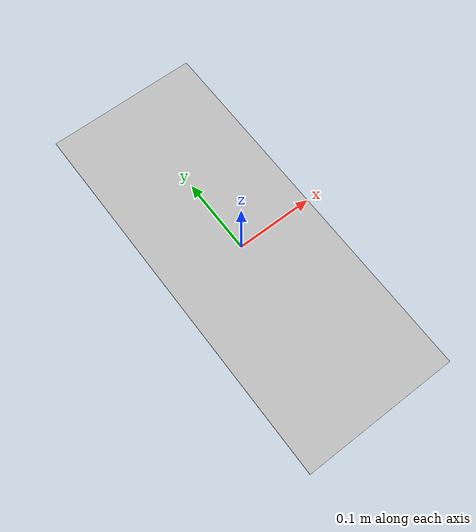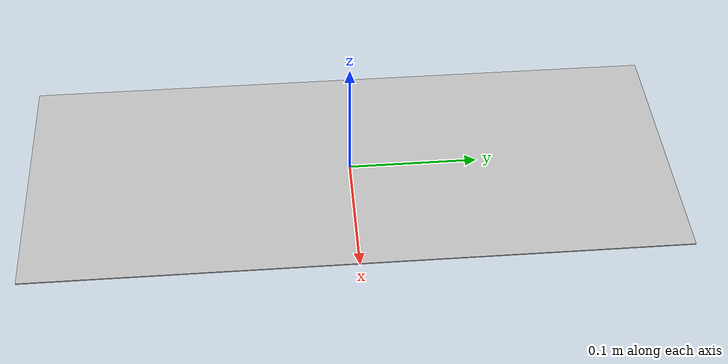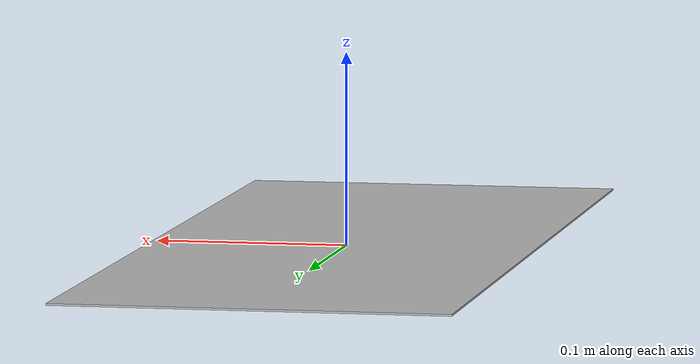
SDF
<?xml version="1.0"?>
<sdf version="1.5">
<model name="small_street">
  <static>true</static>
    <link name="small_street_link">
    <pose>0 0 1e-3 0 0 1.5707963267948966</pose>
        <geometry>
          <box>
            <size>0.5 0.2 1e-3</size>
          </box>
        </geometry>
      <visual name="visual_small_street">
        <cast_shadows>false</cast_shadows>
        <geometry>
          <box>
            <size>0.5 0.2 1e-3</size>
          </box>
        </geometry>
        <material>
          <script>
            <uri>model://small_street/materials/scripts/model.material</uri>
            <name>small_street/small_street</name>
          </script>
        </material>
      </visual>
    </link>
  </model>
</sdf>
